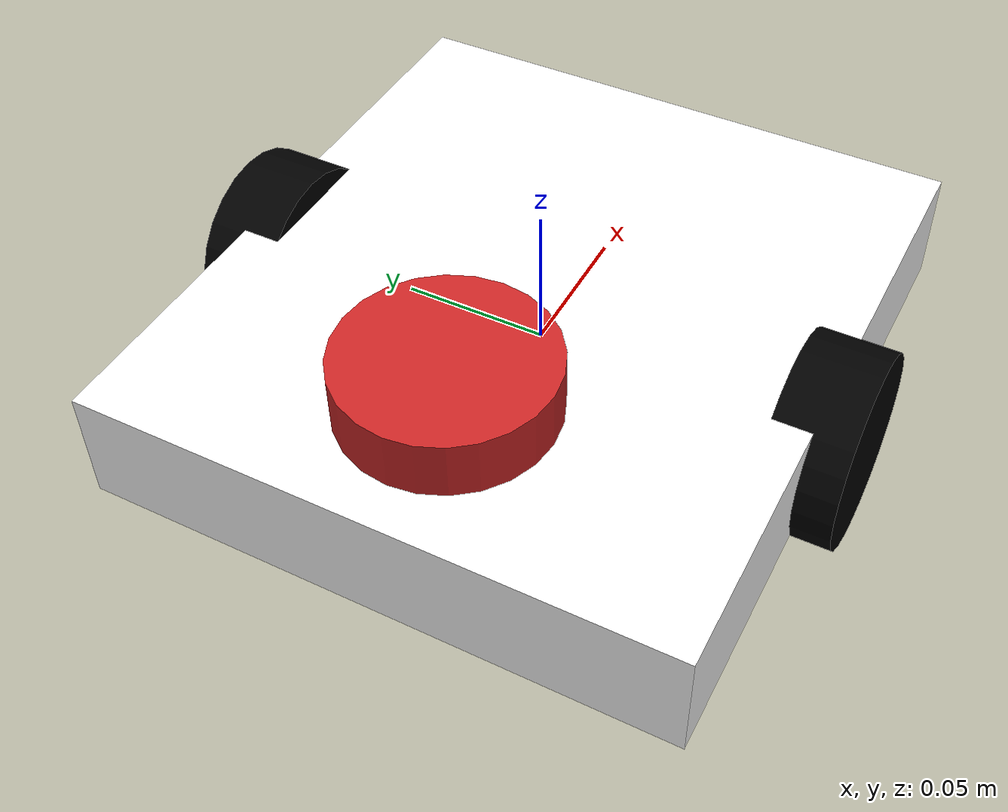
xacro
<?xml version="1.0"?>
<robot xmlns:xacro="http://www.ros.org/wiki/xacro"  name="robot">

    <xacro:arg name="use_ros2_control" default="true"/>
    <xacro:arg name="sim_mode" default="false"/>

    <xacro:include filename="robot_core.xacro"/>

    <xacro:if value="$(arg use_ros2_control)">
        <xacro:include filename="ros2_control.xacro" />
    </xacro:if>
    <xacro:unless value="$(arg use_ros2_control)">
        <xacro:include filename="gazebo_control.xacro" />
    </xacro:unless>

    <xacro:include filename="lidar.xacro" />

</robot>

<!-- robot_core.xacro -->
<robot xmlns:xacro="http://www.ros.org/wiki/xacro"  >

    <xacro:include filename="inertial_macros.xacro" />

    <xacro:property name="chassis_length" value="0.22"/>
    <xacro:property name="chassis_width" value="0.2"/>
    <xacro:property name="chassis_height" value="0.04"/>
    <xacro:property name="chassis_mass" value="0.5"/>
    <xacro:property name="wheel_radius" value="0.0325"/>
    <xacro:property name="wheel_thickness" value="0.026"/>
    <xacro:property name="wheel_mass" value="0.05"/>
    <xacro:property name="wheel_offset_x" value="${chassis_length/2}"/>
    <xacro:property name="wheel_offset_y" value="${chassis_width/2}"/>
    <xacro:property name="wheel_offset_z" value="${wheel_radius/2}"/>
    <xacro:property name="caster_wheel_radius" value="0.010"/>
    <xacro:property name="caster_wheel_mass" value="0.01"/>
    <xacro:property name="caster_wheel_offset_x" value="0.02"/>
    <xacro:property name="caster_wheel_offset_z" value="-0.005"/>

    <material name="white">
        <color rgba="1 1 1 1" />
    </material>

    <material name="orange">
        <color rgba="1 0.3 0.1 1" />
    </material>

    <material name="blue">
        <color rgba="0.2 0.2 1 1" />
    </material>

    <material name="black">
        <color rgba="0 0 0 1" />
    </material>

    <!-- BASE LINK -->

    <link name="base_link">
    </link>

    <!-- CHASSIS LINK -->
    <joint name="chassis_joint" type="fixed">
        <parent link="base_link" />
        <child link="chassis"/>
        <origin xyz="${-wheel_offset_x} 0 ${-wheel_offset_z}"/>
    </joint>

    <link name="chassis">
        <visual>
            <origin xyz="${chassis_length/2} 0 ${chassis_height/2}"/>
            <geometry>
                <box size="${chassis_length} ${chassis_width} ${chassis_height}"/>
            </geometry>
            <material name="white" />
        </visual>
        <collision>
            <origin xyz="${chassis_length/2} 0 ${chassis_height/2}"/>
            <geometry>
                <box size="${chassis_length} ${chassis_width} ${chassis_height}"/>
            </geometry>
        </collision>
        <xacro:inertial_box mass="0.5" x="${chassis_length}" y="${chassis_width}" z="${chassis_height}">
            <origin xyz="${chassis_length/2} 0 ${chassis_height/2}" rpy="0 0 0"/>
        </xacro:inertial_box>
    </link>

    <gazebo reference="chassis">
        <material>Gazebo/White</material>
    </gazebo>

    <!-- LEFT WHEEL LINK -->

    <joint name="left_wheel_joint" type="continuous">
        <parent link="base_link" />
        <child link="left_wheel" />
        <origin xyz="0 ${-wheel_offset_y} 0" rpy="-${pi/2} 0 0" />
        <axis xyz="0 0 1" />
    </joint>

    <link name="left_wheel">
        <visual>
            <geometry>
                <cylinder radius="${wheel_radius}" length="${wheel_thickness}"/>
            </geometry>
            <material name="black" />
        </visual>
        <collision>
            <geometry>
                <sphere radius="${wheel_radius}"/>
            </geometry>
        </collision>
        <xacro:inertial_cylinder mass="${wheel_mass}" length="${wheel_thickness}" radius="${wheel_radius}">
            <origin xyz="0 0 0" rpy="0 0 0" />
        </xacro:inertial_cylinder>
    </link>

    <gazebo reference="left_wheel">
        <material>Gazebo/Black</material>
    </gazebo>
     <!-- RIGHT WHEEL LINK -->

    <joint name="right_wheel_joint" type="continuous">
        <parent link="base_link" />
        <child link="right_wheel" />
        <origin xyz="0 ${wheel_offset_y} 0" rpy="${pi/2} 0 0" />
        <axis xyz="0 0 -1" />
    </joint>

    <link name="right_wheel">
        <visual>
            <geometry>
                <cylinder radius="${wheel_radius}" length="${wheel_thickness}"/>
            </geometry>
            <material name="black" />
        </visual>
        <collision>
            <geometry>
                <sphere radius="${wheel_radius}"/>
            </geometry>
        </collision>
         <xacro:inertial_cylinder mass="${wheel_mass}" length="${wheel_thickness}" radius="${wheel_radius}">
            <origin xyz="0 0 0" rpy="0 0 0" />
        </xacro:inertial_cylinder>
    </link>

    <gazebo reference="right_wheel">
        <material>Gazebo/Black</material>
    </gazebo>

    <!---BACKWARD CASTER WHEEL LINK -->

    <joint name="backward_caster_wheel_joint" type="fixed">
        <parent link="chassis" />
        <child link="backward_caster_wheel" />
        <origin xyz="${caster_wheel_offset_x} 0 ${caster_wheel_offset_z}"/>
    </joint>

    <link name="backward_caster_wheel">
        <visual>
            <geometry>
                <sphere radius="${caster_wheel_radius}"/>
            </geometry>
            <material name="black" />
        </visual>
        <collision>
            <geometry>
                <sphere radius="${caster_wheel_radius}"/>
            </geometry>
        </collision>
        <xacro:inertial_sphere mass="${caster_wheel_mass}" radius="${caster_wheel_radius}">
            <origin xyz="0 0 0" rpy="0 0 0" />
        </xacro:inertial_sphere>
    </link>

    <gazebo reference="backward_caster_wheel">
        <material>Gazebo/Black</material>
        <mu1 value="0.001"/>
        <mu2 value="0.001"/>
    </gazebo>

    <!---FORWARD CASTER WHEEL LINK -->

     <joint name="forward_caster_wheel_joint" type="fixed">
        <parent link="chassis" />
        <child link="forward_caster_wheel" />
        <origin xyz="${chassis_length - caster_wheel_offset_x} 0 ${caster_wheel_offset_z}"/>
    </joint>

    <link name="forward_caster_wheel">
        <visual>
            <geometry>
                <sphere radius="${caster_wheel_radius}"/>
            </geometry>
            <material name="black" />
        </visual>
        <collision>
            <geometry>
                <sphere radius="${caster_wheel_radius}"/>
            </geometry>
        </collision>
        <xacro:inertial_sphere mass="${caster_wheel_mass}" radius="${caster_wheel_radius}">
            <origin xyz="0 0 0" rpy="0 0 0" />
        </xacro:inertial_sphere>
    </link>

    <gazebo reference="forward_caster_wheel">
        <material>Gazebo/Black</material>
        <mu1 value="0.001"/>
        <mu2 value="0.001"/>
    </gazebo>

</robot>

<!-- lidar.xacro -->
<robot xmlns:xacro="http://www.ros.org/wiki/xacro" >

    <joint name="laser_joint" type="fixed">
        <parent link="chassis"/>
        <child link="laser_frame"/>
        <origin xyz="0.05 0 0.04" rpy="0 0 0"/>
    </joint>

    <link name="laser_frame">
        <visual>
            <geometry>
                <cylinder radius="0.035" length="0.04"/>
            </geometry>
            <material name="red"/>
        </visual>
        <collision>
            <geometry>
                <cylinder radius="0.035" length="0.04"/>
            </geometry>
        </collision>
        <xacro:inertial_cylinder mass="0.1" length="0.04" radius="0.035">
            <origin xyz="0 0 0" rpy="0 0 0"/>
        </xacro:inertial_cylinder>
    </link>

    <gazebo reference="laser_frame">
        <material>Gazebo/Red</material>

        <sensor name="laser" type="ray">
            <pose> 0 0 0 0 0 0 </pose>
            <visualize>true</visualize>
            <update_rate>10</update_rate>
            <ray>
                <scan>
                    <horizontal>
                        <samples>360</samples>
                        <min_angle>-3.14</min_angle>
                        <max_angle>3.14</max_angle>
                    </horizontal>
                </scan>
                <range>
                    <min>0.3</min>
                    <max>12</max>
                </range>
            </ray>
            <plugin name="laser_controller" filename="libgazebo_ros_ray_sensor.so">
                <ros>
                    <argument>~/out:=scan</argument>
                </ros>
                <output_type>sensor_msgs/LaserScan</output_type>
                <frame_name>laser_frame</frame_name>
            </plugin>
        </sensor>
    </gazebo>

</robot>
